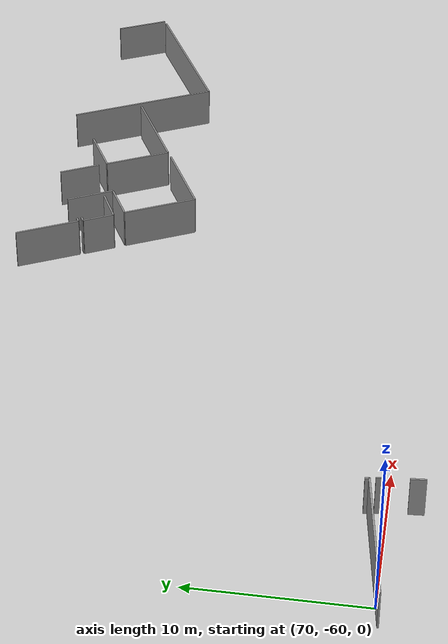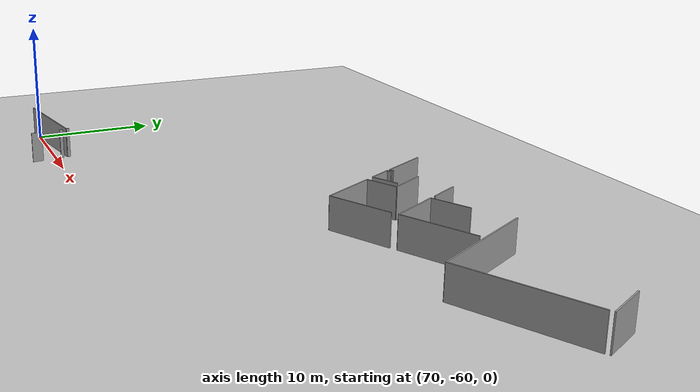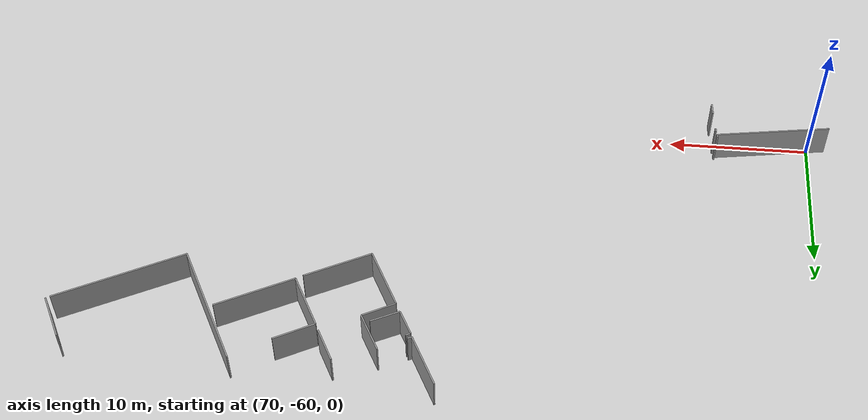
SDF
<sdf version="1.6">
 <world name="default">
  <model name="ground_plane">
   <static>1</static>
   <link name="link">
    <collision name="collision">
     <geometry><plane><normal>0 0 1</normal><size>100 100</size></plane></geometry>
     <surface><friction><ode><mu>100</mu><mu2>50</mu2></ode></friction></surface>
    </collision>
    <visual name="visual">
     <cast_shadows>0</cast_shadows>
     <geometry><plane><normal>0 0 1</normal><size>100 100</size></plane></geometry>
     <material>
      <script><uri>file://media/materials/scripts/gazebo.material</uri><name>Gazebo/Grey</name></script>
     </material>
    </visual>
   </link>
  </model>
  <model name="0510045925_40">
   <static>1</static>
   <link name="Wall_74">
    <collision name="Wall_74_Collision">
     <geometry><box><size>1.9160094008 0.1 2.5</size></box></geometry>
     <pose>0.958004700398 0 1.25 0 0 0</pose>
    </collision>
    <visual name="Wall_74_Visual">
     <pose>0.958004700398 0 1.25 0 0 0</pose>
     <geometry><box><size>1.9160094008 0.1 2.5</size></box></geometry>
     <material>
      <script><uri>file://media/materials/scripts/gazebo.material</uri><name>Gazebo/Grey</name></script>
      <ambient>1 1 1 1</ambient>
     </material>
    </visual>
    <pose>232.202025329 -142.435648841 0 0 0 2.04854336282</pose>
   </link>
   <link name="Wall_75">
    <collision name="Wall_75_Collision">
     <geometry><box><size>0.36106202112 0.1 2.5</size></box></geometry>
     <pose>0.18053101056 0 1.25 0 0 0</pose>
    </collision>
    <visual name="Wall_75_Visual">
     <pose>0.18053101056 0 1.25 0 0 0</pose>
     <geometry><box><size>0.36106202112 0.1 2.5</size></box></geometry>
     <material>
      <script><uri>file://media/materials/scripts/gazebo.material</uri><name>Gazebo/Grey</name></script>
      <ambient>1 1 1 1</ambient>
     </material>
    </visual>
    <pose>231.321083221 -140.734169184 0 0 0 0.470563562865</pose>
   </link>
   <link name="Wall_78">
    <collision name="Wall_78_Collision">
     <geometry><box><size>2.12828686141 0.1 2.5</size></box></geometry>
     <pose>1.0641434307 0 1.25 0 0 0</pose>
    </collision>
    <visual name="Wall_78_Visual">
     <pose>1.0641434307 0 1.25 0 0 0</pose>
     <geometry><box><size>2.12828686141 0.1 2.5</size></box></geometry>
     <material>
      <script><uri>file://media/materials/scripts/gazebo.material</uri><name>Gazebo/Grey</name></script>
      <ambient>1 1 1 1</ambient>
     </material>
    </visual>
    <pose>234.114920941 -141.502677597 0 0 0 -2.6878113911</pose>
   </link>
   <link name="Wall_79">
    <collision name="Wall_79_Collision">
     <geometry><box><size>4.53891776726 0.1 2.5</size></box></geometry>
     <pose>2.26945888363 0 1.25 0 0 0</pose>
    </collision>
    <visual name="Wall_79_Visual">
     <pose>2.26945888363 0 1.25 0 0 0</pose>
     <geometry><box><size>4.53891776726 0.1 2.5</size></box></geometry>
     <material>
      <script><uri>file://media/materials/scripts/gazebo.material</uri><name>Gazebo/Grey</name></script>
      <ambient>1 1 1 1</ambient>
     </material>
    </visual>
    <pose>234.599680211 -147.111164691 0 0 0 2.04272123</pose>
   </link>
   <link name="Wall_80">
    <collision name="Wall_80_Collision">
     <geometry><box><size>2.4832305824 0.1 2.5</size></box></geometry>
     <pose>1.2416152912 0 1.25 0 0 0</pose>
    </collision>
    <visual name="Wall_80_Visual">
     <pose>1.2416152912 0 1.25 0 0 0</pose>
     <geometry><box><size>2.4832305824 0.1 2.5</size></box></geometry>
     <material>
      <script><uri>file://media/materials/scripts/gazebo.material</uri><name>Gazebo/Grey</name></script>
      <ambient>1 1 1 1</ambient>
     </material>
    </visual>
    <pose>232.536280805 -143.068373899 0 0 0 0.477451815305</pose>
   </link>
   <link name="Wall_81">
    <collision name="Wall_81_Collision">
     <geometry><box><size>2.92623322061 0.1 2.5</size></box></geometry>
     <pose>1.4631166103 0 1.25 0 0 0</pose>
    </collision>
    <visual name="Wall_81_Visual">
     <pose>1.4631166103 0 1.25 0 0 0</pose>
     <geometry><box><size>2.92623322061 0.1 2.5</size></box></geometry>
     <material>
      <script><uri>file://media/materials/scripts/gazebo.material</uri><name>Gazebo/Grey</name></script>
      <ambient>1 1 1 1</ambient>
     </material>
    </visual>
    <pose>234.741808584 -141.927286109 0 0 0 2.05430476286</pose>
   </link>
   <link name="Wall_83">
    <collision name="Wall_83_Collision">
     <geometry><box><size>0.329159012957 0.1 2.5</size></box></geometry>
     <pose>0.164579506478 0 1.25 0 0 0</pose>
    </collision>
    <visual name="Wall_83_Visual">
     <pose>0.164579506478 0 1.25 0 0 0</pose>
     <geometry><box><size>0.329159012957 0.1 2.5</size></box></geometry>
     <material>
      <script><uri>file://media/materials/scripts/gazebo.material</uri><name>Gazebo/Grey</name></script>
      <ambient>1 1 1 1</ambient>
     </material>
    </visual>
    <pose>231.511941321 -140.314129083 0 0 0 -2.67794504459</pose>
   </link>
   <link name="Wall_84">
    <collision name="Wall_84_Collision">
     <geometry><box><size>3.93785061103 0.1 2.5</size></box></geometry>
     <pose>1.96892530552 0 1.25 0 0 0</pose>
    </collision>
    <visual name="Wall_84_Visual">
     <pose>1.96892530552 0 1.25 0 0 0</pose>
     <geometry><box><size>3.93785061103 0.1 2.5</size></box></geometry>
     <material>
      <script><uri>file://media/materials/scripts/gazebo.material</uri><name>Gazebo/Grey</name></script>
      <ambient>1 1 1 1</ambient>
     </material>
    </visual>
    <pose>231.21753255 -140.461333469 0 0 0 2.04110224111</pose>
   </link>
   <link name="Wall_88">
    <collision name="Wall_88_Collision">
     <geometry><box><size>4.97659049303 0.1 2.5</size></box></geometry>
     <pose>2.48829524652 0 1.25 0 0 0</pose>
    </collision>
    <visual name="Wall_88_Visual">
     <pose>2.48829524652 0 1.25 0 0 0</pose>
     <geometry><box><size>4.97659049303 0.1 2.5</size></box></geometry>
     <material>
      <script><uri>file://media/materials/scripts/gazebo.material</uri><name>Gazebo/Grey</name></script>
      <ambient>1 1 1 1</ambient>
     </material>
    </visual>
    <pose>239.041191848 -144.86629781 0 0 0 -2.67361162434</pose>
   </link>
   <link name="Wall_89">
    <collision name="Wall_89_Collision">
     <geometry><box><size>2.51071794371 0.1 2.5</size></box></geometry>
     <pose>1.25535897185 0 1.25 0 0 0</pose>
    </collision>
    <visual name="Wall_89_Visual">
     <pose>1.25535897185 0 1.25 0 0 0</pose>
     <geometry><box><size>2.51071794371 0.1 2.5</size></box></geometry>
     <material>
      <script><uri>file://media/materials/scripts/gazebo.material</uri><name>Gazebo/Grey</name></script>
      <ambient>1 1 1 1</ambient>
     </material>
    </visual>
    <pose>237.427019619 -140.512855004 0 0 0 2.04872996989</pose>
   </link>
   <link name="Wall_94">
    <collision name="Wall_94_Collision">
     <geometry><box><size>4.05276674057 0.1 2.5</size></box></geometry>
     <pose>2.02638337029 0 1.25 0 0 0</pose>
    </collision>
    <visual name="Wall_94_Visual">
     <pose>2.02638337029 0 1.25 0 0 0</pose>
     <geometry><box><size>4.05276674057 0.1 2.5</size></box></geometry>
     <material>
      <script><uri>file://media/materials/scripts/gazebo.material</uri><name>Gazebo/Grey</name></script>
      <ambient>1 1 1 1</ambient>
     </material>
    </visual>
    <pose>239.508185071 -144.596507703 0 0 0 2.04559068451</pose>
   </link>
   <link name="Wall_95">
    <collision name="Wall_95_Collision">
     <geometry><box><size>3.03888859708 0.1 2.5</size></box></geometry>
     <pose>1.51944429854 0 1.25 0 0 0</pose>
    </collision>
    <visual name="Wall_95_Visual">
     <pose>1.51944429854 0 1.25 0 0 0</pose>
     <geometry><box><size>3.03888859708 0.1 2.5</size></box></geometry>
     <material>
      <script><uri>file://media/materials/scripts/gazebo.material</uri><name>Gazebo/Grey</name></script>
      <ambient>1 1 1 1</ambient>
     </material>
    </visual>
    <pose>237.655440217 -140.992030659 0 0 0 0.48008243844</pose>
   </link>
   <link name="Wall_101">
    <collision name="Wall_101_Collision">
     <geometry><box><size>5.81924226671 0.1 2.5</size></box></geometry>
     <pose>2.90962113335 0 1.25 0 0 0</pose>
    </collision>
    <visual name="Wall_101_Visual">
     <pose>2.90962113335 0 1.25 0 0 0</pose>
     <geometry><box><size>5.81924226671 0.1 2.5</size></box></geometry>
     <material>
      <script><uri>file://media/materials/scripts/gazebo.material</uri><name>Gazebo/Grey</name></script>
      <ambient>1 1 1 1</ambient>
     </material>
    </visual>
    <pose>244.693332657 -141.954950382 0 0 0 -2.67041612389</pose>
   </link>
   <link name="Wall_110">
    <collision name="Wall_110_Collision">
     <geometry><box><size>9.15372497081 0.1 2.5</size></box></geometry>
     <pose>4.5768624854 0 1.25 0 0 0</pose>
    </collision>
    <visual name="Wall_110_Visual">
     <pose>4.5768624854 0 1.25 0 0 0</pose>
     <geometry><box><size>9.15372497081 0.1 2.5</size></box></geometry>
     <material>
      <script><uri>file://media/materials/scripts/gazebo.material</uri><name>Gazebo/Grey</name></script>
      <ambient>1 1 1 1</ambient>
     </material>
    </visual>
    <pose>247.208497246 -146.063983148 0 0 0 2.04596347781</pose>
   </link>
   <link name="Wall_118">
    <collision name="Wall_118_Collision">
     <geometry><box><size>9.49593076606 0.1 2.5</size></box></geometry>
     <pose>4.74796538303 0 1.25 0 0 0</pose>
    </collision>
    <visual name="Wall_118_Visual">
     <pose>4.74796538303 0 1.25 0 0 0</pose>
     <geometry><box><size>9.49593076606 0.1 2.5</size></box></geometry>
     <material>
      <script><uri>file://media/materials/scripts/gazebo.material</uri><name>Gazebo/Grey</name></script>
      <ambient>1 1 1 1</ambient>
     </material>
    </visual>
    <pose>255.670211416 -141.754447857 0 0 0 -2.67053423118</pose>
   </link>
   <link name="Wall_119">
    <collision name="Wall_119_Collision">
     <geometry><box><size>3.2652839535 0.1 2.5</size></box></geometry>
     <pose>1.63264197675 0 1.25 0 0 0</pose>
    </collision>
    <visual name="Wall_119_Visual">
     <pose>1.63264197675 0 1.25 0 0 0</pose>
     <geometry><box><size>3.2652839535 0.1 2.5</size></box></geometry>
     <material>
      <script><uri>file://media/materials/scripts/gazebo.material</uri><name>Gazebo/Grey</name></script>
      <ambient>1 1 1 1</ambient>
     </material>
    </visual>
    <pose>255.939240121 -141.615618893 0 0 0 2.03847617201</pose>
   </link>
   <link name="Wall_1911">
    <collision name="Wall_1911_Collision">
     <geometry><box><size>0.263213805147 0.1 2.5</size></box></geometry>
     <pose>0.131606902573 0 1.25 0 0 0</pose>
    </collision>
    <visual name="Wall_1911_Visual">
     <pose>0.131606902573 0 1.25 0 0 0</pose>
     <geometry><box><size>0.263213805147 0.1 2.5</size></box></geometry>
     <material>
      <script><uri>file://media/materials/scripts/gazebo.material</uri><name>Gazebo/Grey</name></script>
      <ambient>1 1 1 1</ambient>
     </material>
    </visual>
    <pose>210.895967107 -160.392045887 0 0 0 -1.43830851312</pose>
   </link>
   <link name="Wall_1912">
    <collision name="Wall_1912_Collision">
     <geometry><box><size>0.881055144846 0.1 2.5</size></box></geometry>
     <pose>0.440527572423 0 1.25 0 0 0</pose>
    </collision>
    <visual name="Wall_1912_Visual">
     <pose>0.440527572423 0 1.25 0 0 0</pose>
     <geometry><box><size>0.881055144846 0.1 2.5</size></box></geometry>
     <material>
      <script><uri>file://media/materials/scripts/gazebo.material</uri><name>Gazebo/Grey</name></script>
      <ambient>1 1 1 1</ambient>
     </material>
    </visual>
    <pose>211.084541001 -162.168650542 0 0 0 -1.50102814328</pose>
   </link>
   <link name="Wall_1925">
    <collision name="Wall_1925_Collision">
     <geometry><box><size>0.249614470076 0.1 2.5</size></box></geometry>
     <pose>0.124807235038 0 1.25 0 0 0</pose>
    </collision>
    <visual name="Wall_1925_Visual">
     <pose>0.124807235038 0 1.25 0 0 0</pose>
     <geometry><box><size>0.249614470076 0.1 2.5</size></box></geometry>
     <material>
      <script><uri>file://media/materials/scripts/gazebo.material</uri><name>Gazebo/Grey</name></script>
      <ambient>1 1 1 1</ambient>
     </material>
    </visual>
    <pose>210.792670237 -159.819979188 0 0 0 -1.41768317654</pose>
   </link>
   <link name="Wall_1926">
    <collision name="Wall_1926_Collision">
     <geometry><box><size>8.25941270745 0.1 2.5</size></box></geometry>
     <pose>4.12970635372 0 1.25 0 0 0</pose>
    </collision>
    <visual name="Wall_1926_Visual">
     <pose>4.12970635372 0 1.25 0 0 0</pose>
     <geometry><box><size>8.25941270745 0.1 2.5</size></box></geometry>
     <material>
      <script><uri>file://media/materials/scripts/gazebo.material</uri><name>Gazebo/Grey</name></script>
      <ambient>1 1 1 1</ambient>
     </material>
    </visual>
    <pose>210.830740337 -160.066673435 0 0 0 -2.98985680164</pose>
   </link>
   <pose>-133.95 101.083118449 0 0 0 0</pose>
  </model>
 </world>
</sdf>
